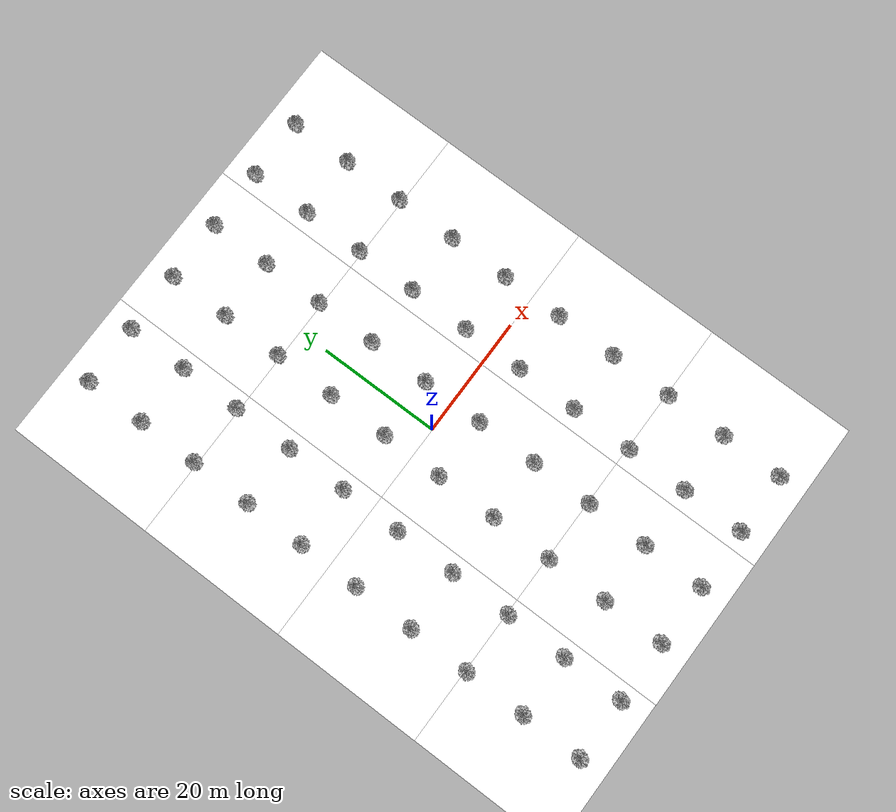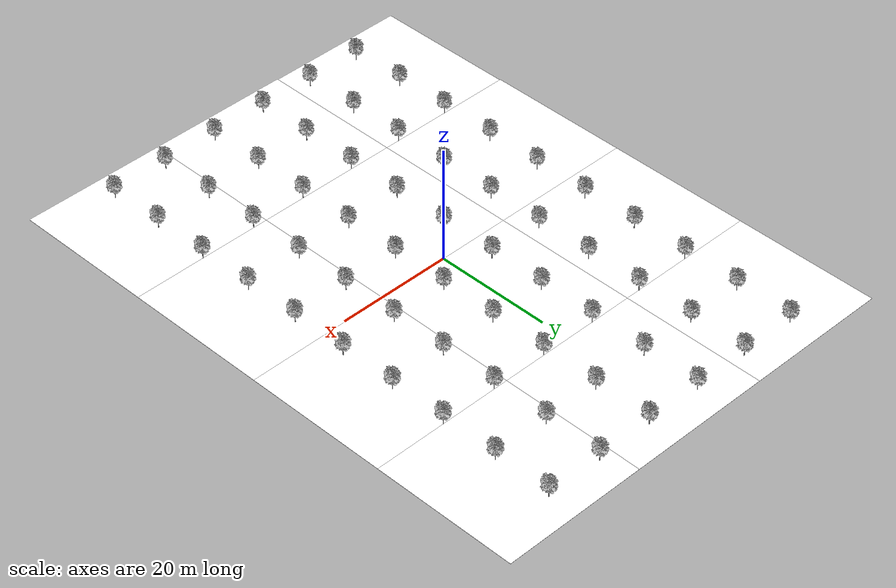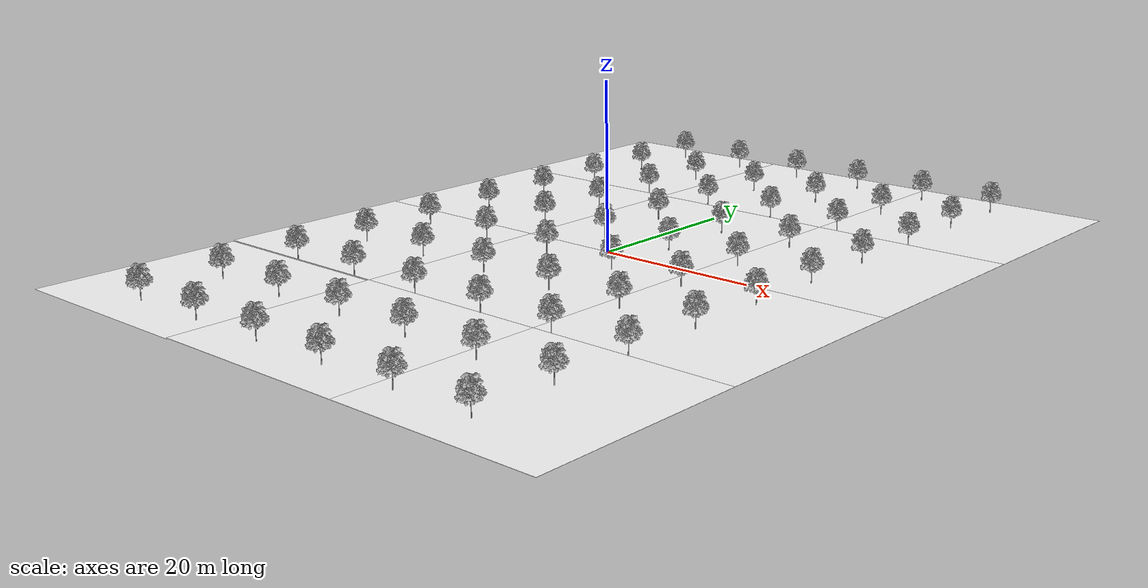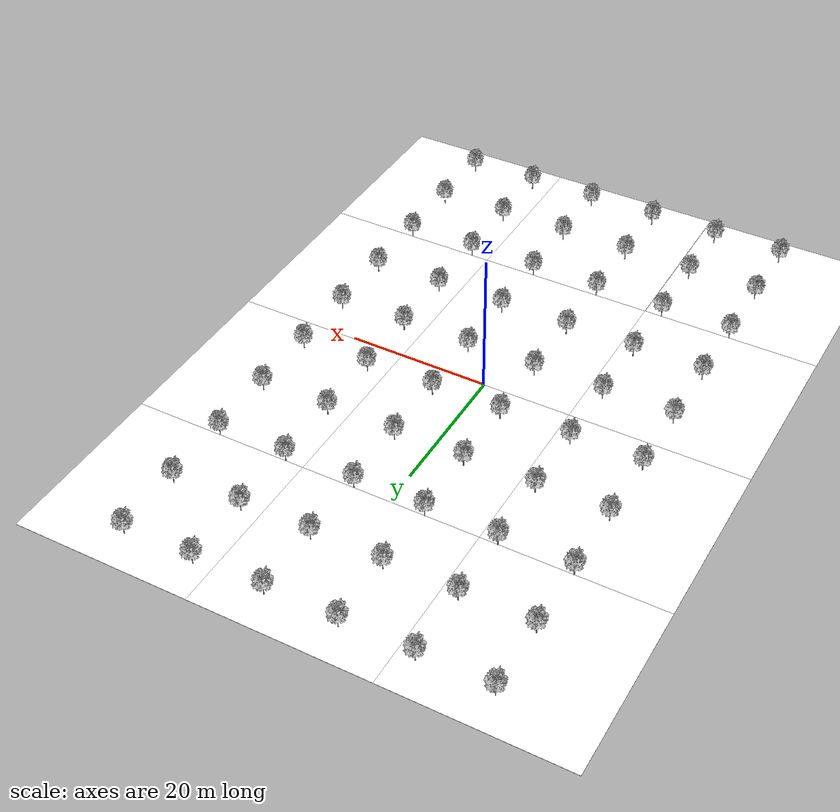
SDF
<?xml version="1.0" encoding="UTF-8"?>
<sdf version="1.9">
  <world name="apple_orchard_100x75_real_gps_centered">
    <physics type="ode">
      <max_step_size>0.004</max_step_size>
      <real_time_factor>1.0</real_time_factor>
      <real_time_update_rate>250</real_time_update_rate>
    </physics>
    <gravity>0 0 -9.8</gravity>
    <magnetic_field>6e-06 2.3e-05 -4.2e-05</magnetic_field>
    <atmosphere type="adiabatic"/>
    <scene>
      <grid>false</grid>
      <ambient>0.4 0.4 0.4 1</ambient>
      <background>0.7 0.7 0.7 1</background>
      <shadows>true</shadows>
    </scene>

    <include>
      <uri>model://grasspatch_no_collision</uri>
      <name>grasspatch_0</name>
      <pose>-25 -37.5 0 0 0 0</pose>
    </include>
    <include>
      <uri>model://grasspatch_no_collision</uri>
      <name>grasspatch_1</name>
      <pose>0 -37.5 0 0 0 0</pose>
    </include>
    <include>
      <uri>model://grasspatch_no_collision</uri>
      <name>grasspatch_2</name>
      <pose>25 -37.5 0 0 0 0</pose>
    </include>

    <include>
      <uri>model://grasspatch_no_collision</uri>
      <name>grasspatch_3</name>
      <pose>-25 -12.5 0 0 0 0</pose>
    </include>
    <include>
      <uri>model://grasspatch_no_collision</uri>
      <name>grasspatch_4</name>
      <pose>0 -12.5 0 0 0 0</pose>
    </include>
    <include>
      <uri>model://grasspatch_no_collision</uri>
      <name>grasspatch_5</name>
      <pose>25 -12.5 0 0 0 0</pose>
    </include>

    <include>
      <uri>model://grasspatch_no_collision</uri>
      <name>grasspatch_6</name>
      <pose>-25 12.5 0 0 0 0</pose>
    </include>
    <include>
      <uri>model://grasspatch_no_collision</uri>
      <name>grasspatch_7</name>
      <pose>0 12.5 0 0 0 0</pose>
    </include>
    <include>
      <uri>model://grasspatch_no_collision</uri>
      <name>grasspatch_8</name>
      <pose>25 12.5 0 0 0 0</pose>
    </include>

    <include>
      <uri>model://grasspatch_no_collision</uri>
      <name>grasspatch_9</name>
      <pose>-25 37.5 0 0 0 0</pose>
    </include>
    <include>
      <uri>model://grasspatch_no_collision</uri>
      <name>grasspatch_10</name>
      <pose>0 37.5 0 0 0 0</pose>
    </include>
    <include>
      <uri>model://grasspatch_no_collision</uri>
      <name>grasspatch_11</name>
      <pose>25 37.5 0 0 0 0</pose>
    </include>

    <include>
      <uri>model://appletree</uri>
      <name>AppleTree_0</name>
      <pose>-25 -45 0 0 0 0</pose>
    </include>
    <include>
      <uri>model://appletree</uri>
      <name>AppleTree_1</name>
      <pose>-25 -35 0 0 0 0</pose>
    </include>
    <include>
      <uri>model://appletree</uri>
      <name>AppleTree_2</name>
      <pose>-25 -25 0 0 0 0</pose>
    </include>
    <include>
      <uri>model://appletree</uri>
      <name>AppleTree_3</name>
      <pose>-25 -15 0 0 0 0</pose>
    </include>
    <include>
      <uri>model://appletree</uri>
      <name>AppleTree_4</name>
      <pose>-25 -5 0 0 0 0</pose>
    </include>
    <include>
      <uri>model://appletree</uri>
      <name>AppleTree_5</name>
      <pose>-25 5 0 0 0 0</pose>
    </include>
    <include>
      <uri>model://appletree</uri>
      <name>AppleTree_6</name>
      <pose>-25 15 0 0 0 0</pose>
    </include>
    <include>
      <uri>model://appletree</uri>
      <name>AppleTree_7</name>
      <pose>-25 25 0 0 0 0</pose>
    </include>
    <include>
      <uri>model://appletree</uri>
      <name>AppleTree_8</name>
      <pose>-25 35 0 0 0 0</pose>
    </include>
    <include>
      <uri>model://appletree</uri>
      <name>AppleTree_9</name>
      <pose>-25 45 0 0 0 0</pose>
    </include>

    <include>
      <uri>model://appletree</uri>
      <name>AppleTree_10</name>
      <pose>-15 -45 0 0 0 0</pose>
    </include>
    <include>
      <uri>model://appletree</uri>
      <name>AppleTree_11</name>
      <pose>-15 -35 0 0 0 0</pose>
    </include>
    <include>
      <uri>model://appletree</uri>
      <name>AppleTree_12</name>
      <pose>-15 -25 0 0 0 0</pose>
    </include>
    <include>
      <uri>model://appletree</uri>
      <name>AppleTree_13</name>
      <pose>-15 -15 0 0 0 0</pose>
    </include>
    <include>
      <uri>model://appletree</uri>
      <name>AppleTree_14</name>
      <pose>-15 -5 0 0 0 0</pose>
    </include>
    <include>
      <uri>model://appletree</uri>
      <name>AppleTree_15</name>
      <pose>-15 5 0 0 0 0</pose>
    </include>
    <include>
      <uri>model://appletree</uri>
      <name>AppleTree_16</name>
      <pose>-15 15 0 0 0 0</pose>
    </include>
    <include>
      <uri>model://appletree</uri>
      <name>AppleTree_17</name>
      <pose>-15 25 0 0 0 0</pose>
    </include>
    <include>
      <uri>model://appletree</uri>
      <name>AppleTree_18</name>
      <pose>-15 35 0 0 0 0</pose>
    </include>
    <include>
      <uri>model://appletree</uri>
      <name>AppleTree_19</name>
      <pose>-15 45 0 0 0 0</pose>
    </include>

    <include>
      <uri>model://appletree</uri>
      <name>AppleTree_20</name>
      <pose>-5 -45 0 0 0 0</pose>
    </include>
    <include>
      <uri>model://appletree</uri>
      <name>AppleTree_21</name>
      <pose>-5 -35 0 0 0 0</pose>
    </include>
    <include>
      <uri>model://appletree</uri>
      <name>AppleTree_22</name>
      <pose>-5 -25 0 0 0 0</pose>
    </include>
    <include>
      <uri>model://appletree</uri>
      <name>AppleTree_23</name>
      <pose>-5 -15 0 0 0 0</pose>
    </include>
    <include>
      <uri>model://appletree</uri>
      <name>AppleTree_24</name>
      <pose>-5 -5 0 0 0 0</pose>
    </include>
    <include>
      <uri>model://appletree</uri>
      <name>AppleTree_25</name>
      <pose>-5 5 0 0 0 0</pose>
    </include>
    <include>
      <uri>model://appletree</uri>
      <name>AppleTree_26</name>
      <pose>-5 15 0 0 0 0</pose>
    </include>
    <include>
      <uri>model://appletree</uri>
      <name>AppleTree_27</name>
      <pose>-5 25 0 0 0 0</pose>
    </include>
    <include>
      <uri>model://appletree</uri>
      <name>AppleTree_28</name>
      <pose>-5 35 0 0 0 0</pose>
    </include>
    <include>
      <uri>model://appletree</uri>
      <name>AppleTree_29</name>
      <pose>-5 45 0 0 0 0</pose>
    </include>

    <include>
      <uri>model://appletree</uri>
      <name>AppleTree_30</name>
      <pose>5 -45 0 0 0 0</pose>
    </include>
    <include>
      <uri>model://appletree</uri>
      <name>AppleTree_31</name>
      <pose>5 -35 0 0 0 0</pose>
    </include>
    <include>
      <uri>model://appletree</uri>
      <name>AppleTree_32</name>
      <pose>5 -25 0 0 0 0</pose>
    </include>
    <include>
      <uri>model://appletree</uri>
      <name>AppleTree_33</name>
      <pose>5 -15 0 0 0 0</pose>
    </include>
    <include>
      <uri>model://appletree</uri>
      <name>AppleTree_34</name>
      <pose>5 -5 0 0 0 0</pose>
    </include>
    <include>
      <uri>model://appletree</uri>
      <name>AppleTree_35</name>
      <pose>5 5 0 0 0 0</pose>
    </include>
    <include>
      <uri>model://appletree</uri>
      <name>AppleTree_36</name>
      <pose>5 15 0 0 0 0</pose>
    </include>
    <include>
      <uri>model://appletree</uri>
      <name>AppleTree_37</name>
      <pose>5 25 0 0 0 0</pose>
    </include>
    <include>
      <uri>model://appletree</uri>
      <name>AppleTree_38</name>
      <pose>5 35 0 0 0 0</pose>
    </include>
    <include>
      <uri>model://appletree</uri>
      <name>AppleTree_39</name>
      <pose>5 45 0 0 0 0</pose>
    </include>

    <include>
      <uri>model://appletree</uri>
      <name>AppleTree_40</name>
      <pose>15 -45 0 0 0 0</pose>
    </include>
    <include>
      <uri>model://appletree</uri>
      <name>AppleTree_41</name>
      <pose>15 -35 0 0 0 0</pose>
    </include>
    <include>
      <uri>model://appletree</uri>
      <name>AppleTree_42</name>
      <pose>15 -25 0 0 0 0</pose>
    </include>
    <include>
      <uri>model://appletree</uri>
      <name>AppleTree_43</name>
      <pose>15 -15 0 0 0 0</pose>
    </include>
    <include>
      <uri>model://appletree</uri>
      <name>AppleTree_44</name>
      <pose>15 -5 0 0 0 0</pose>
    </include>
    <include>
      <uri>model://appletree</uri>
      <name>AppleTree_45</name>
      <pose>15 5 0 0 0 0</pose>
    </include>
    <include>
      <uri>model://appletree</uri>
      <name>AppleTree_46</name>
      <pose>15 15 0 0 0 0</pose>
    </include>
    <include>
      <uri>model://appletree</uri>
      <name>AppleTree_47</name>
      <pose>15 25 0 0 0 0</pose>
    </include>
    <include>
      <uri>model://appletree</uri>
      <name>AppleTree_48</name>
      <pose>15 35 0 0 0 0</pose>
    </include>
    <include>
      <uri>model://appletree</uri>
      <name>AppleTree_49</name>
      <pose>15 45 0 0 0 0</pose>
    </include>

    <include>
      <uri>model://appletree</uri>
      <name>AppleTree_50</name>
      <pose>25 -45 0 0 0 0</pose>
    </include>
    <include>
      <uri>model://appletree</uri>
      <name>AppleTree_51</name>
      <pose>25 -35 0 0 0 0</pose>
    </include>
    <include>
      <uri>model://appletree</uri>
      <name>AppleTree_52</name>
      <pose>25 -25 0 0 0 0</pose>
    </include>
    <include>
      <uri>model://appletree</uri>
      <name>AppleTree_53</name>
      <pose>25 -15 0 0 0 0</pose>
    </include>
    <include>
      <uri>model://appletree</uri>
      <name>AppleTree_54</name>
      <pose>25 -5 0 0 0 0</pose>
    </include>
    <include>
      <uri>model://appletree</uri>
      <name>AppleTree_55</name>
      <pose>25 5 0 0 0 0</pose>
    </include>
    <include>
      <uri>model://appletree</uri>
      <name>AppleTree_56</name>
      <pose>25 15 0 0 0 0</pose>
    </include>
    <include>
      <uri>model://appletree</uri>
      <name>AppleTree_57</name>
      <pose>25 25 0 0 0 0</pose>
    </include>
    <include>
      <uri>model://appletree</uri>
      <name>AppleTree_58</name>
      <pose>25 35 0 0 0 0</pose>
    </include>
    <include>
      <uri>model://appletree</uri>
      <name>AppleTree_59</name>
      <pose>25 45 0 0 0 0</pose>
    </include>

    <light name="sunUTC" type="directional">
      <pose>0 0 500 0 0 0</pose>
      <cast_shadows>true</cast_shadows>
      <intensity>1</intensity>
      <direction>0.001 0.625 -0.78</direction>
      <diffuse>0.904 0.904 0.904 1</diffuse>
      <specular>0.271 0.271 0.271 1</specular>
      <attenuation>
        <range>2000</range>
        <linear>0</linear>
        <constant>1</constant>
        <quadratic>0</quadratic>
      </attenuation>
      <spot>
        <inner_angle>0</inner_angle>
        <outer_angle>0</outer_angle>
        <falloff>0</falloff>
      </spot>
    </light>
    <spherical_coordinates>
      <surface_model>EARTH_WGS84</surface_model>
      <world_frame_orientation>ENU</world_frame_orientation>
      <latitude_deg>59.368777357683165</latitude_deg>
      <longitude_deg>10.445698036100689</longitude_deg>
      <elevation>0</elevation>
    </spherical_coordinates>
  </world>
</sdf>

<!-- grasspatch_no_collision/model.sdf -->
<sdf version="1.4">
    <model name="grasspatch_no_collision">
        <static>true</static>
        <link name="link">

        <collision name="ground_collision">
            <pose>0 0 0 0 0 0</pose>
            <geometry>
            <plane>
                <normal>0 0 1</normal>
                <size>25 25</size>
            </plane>
            </geometry>
            <surface>
            <contact>
                <collide_bitmask>0xFFFF</collide_bitmask>
            </contact>
            <friction>
                <ode>
                <mu>1.0</mu>
                <mu2>1.0</mu2>
                </ode>
            </friction>
            </surface>
        </collision>

            <visual name="visual_s10">
                <pose>0 0 0 0 0 0</pose>
                <cast_shadows>false</cast_shadows>
                <geometry>
                    <plane>
                        <normal>0 0 1</normal>
                        <size>25 25</size>
                    </plane>
                </geometry>
                <material>
                    <diffuse>1.0 1.0 1.0</diffuse>
                    <specular>1.0 1.0 1.0</specular>
                    <pbr>
                        <metal>
                            <albedo_map>materials/textures/grass_dry.png</albedo_map>
                            <normal_map>materials/textures/grass_dry.png</normal_map>
                        </metal>
                    </pbr>
                </material>
            </visual>
        </link>
    </model>
</sdf>

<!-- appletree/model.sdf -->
<sdf version="1.9">
  <model name="appletree">
    <static>true</static>
    <link name="link">

      <!-- Use the exact same mesh for collisions! -->
      <collision name="collision">
        <!-- Exact same pose as the visual -->
        <pose>0 0 0 0 0 0</pose>
        <geometry>
          <mesh>
            <uri>model://appletree/meshes/appletree.obj</uri>
            <scale>8 8 8</scale>
          </mesh>
        </geometry>
      </collision>

      <!-- The visual mesh -->
      <visual name="visual">
        <pose>0 0 0 0 0 0</pose>
        <geometry>
          <mesh>
            <uri>model://appletree/meshes/appletree.obj</uri>
            <scale>8 8 8</scale>
          </mesh>
        </geometry>
      </visual>

    </link>
  </model>
</sdf>
